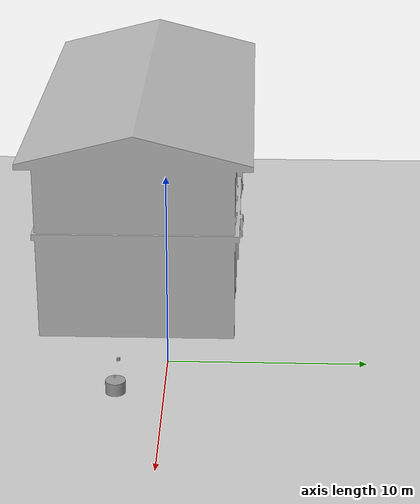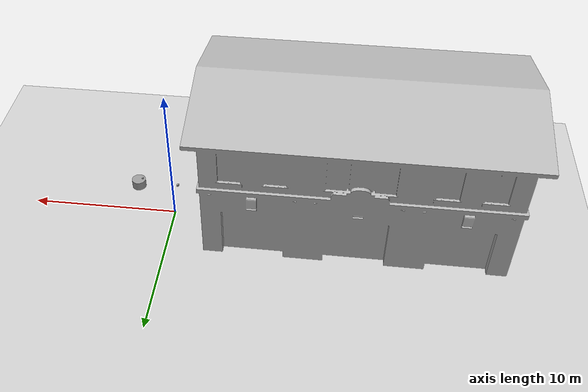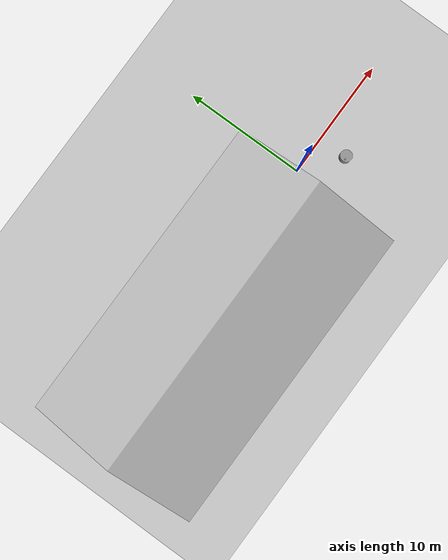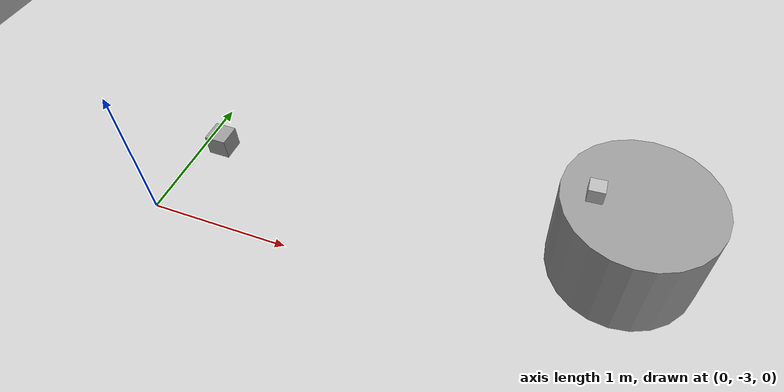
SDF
<sdf version="1.6">
 <world name="default">
  <light name="sun" type="directional">
   <pose>0 0 10 0 -0 0</pose>
   <diffuse>0.8 0.8 0.8 1</diffuse>
   <specular>0.2 0.2 0.2 1</specular>
   <attenuation>
    <range>1000</range>
    <constant>0.9</constant>
    <linear>0.01</linear>
    <quadratic>0.001</quadratic>
   </attenuation>
   <direction>-0.5 0.1 -0.9</direction>
  </light>
  <model name="ground_plane">
   <static>1</static>
   <link name="link">
    <collision name="collision">
     <geometry><plane><normal>0 0 1</normal><size>100 100</size></plane></geometry>
     <surface><friction><ode><mu>100</mu><mu2>50</mu2></ode></friction></surface>
    </collision>
    <visual name="visual">
     <cast_shadows>0</cast_shadows>
     <geometry><plane><normal>0 0 1</normal><size>100 100</size></plane></geometry>
     <material>
      <script><uri>file://media/materials/scripts/gazebo.material</uri><name>Gazebo/Grey</name></script>
     </material>
    </visual>
   </link>
  </model>
  <gravity>0 0 -9.8</gravity>
  <magnetic_field>6e-06 2.3e-05 -4.2e-05</magnetic_field>
  <atmosphere type="adiabatic"/>
  <physics name="default_physics" default="0" type="ode">
   <max_step_size>0.001</max_step_size>
   <real_time_factor>1</real_time_factor>
   <real_time_update_rate>1000</real_time_update_rate>
  </physics>
  <scene><ambient>0.4 0.4 0.4 1</ambient><background>0.7 0.7 0.7 1</background><shadows>1</shadows></scene>
  <spherical_coordinates>
   <surface_model>EARTH_WGS84</surface_model>
   <latitude_deg>0</latitude_deg>
   <longitude_deg>0</longitude_deg>
   <elevation>0</elevation>
   <heading_deg>0</heading_deg>
  </spherical_coordinates>
  <model name="particle_model">
   <link name="link">
    <pose>-0.076453 -1.75849 0 0 -0 0</pose>
    <gravity>0</gravity>
    <visual name="Wall_1_Visual">
     <pose>0 0 0.25 0 -0 0</pose>
     <geometry><box><size>0.15 0.15 0.15</size></box></geometry>
     <material>
      <lighting>0</lighting>
      <script><uri>file://media/materials/scripts/gazebo.material</uri><name>Gazebo/Grey</name></script>
     </material>
     <cast_shadows>0</cast_shadows>
    </visual>
    <inertial>
     <inertia><ixx>1</ixx><ixy>0</ixy><ixz>0</ixz><iyy>1</iyy><iyz>0</iyz><izz>1</izz></inertia>
     <mass>1</mass>
    </inertial>
   </link>
   <static>0</static>
   <plugin name="particles" filename="libModelParticlePlugin.so"/>
   <pose>0.356016 -0.725299 0 0 -0 0</pose>
  </model>
  <model name="camera">
   <pose>2.8363 -2.43317 0.698432 -0.000108 0.00065 -3.07143</pose>
   <link name="link">
    <inertial>
     <mass>0.1</mass>
     <inertia>
      <ixx>0.000166667</ixx>
      <iyy>0.000166667</iyy>
      <izz>0.000166667</izz>
      <ixy>0</ixy>
      <ixz>0</ixz>
      <iyz>0</iyz>
     </inertia>
    </inertial>
    <collision name="collision"><geometry><box><size>0.1 0.1 0.1</size></box></geometry></collision>
    <visual name="visual"><geometry><box><size>0.1 0.1 0.1</size></box></geometry></visual>
    <sensor name="camera" type="camera">
     <camera name="__default__">
      <horizontal_fov>1.047</horizontal_fov>
      <image><width>320</width><height>240</height></image>
      <clip><near>0.1</near><far>100</far></clip>
     </camera>
     <always_on>1</always_on>
     <update_rate>30</update_rate>
     <visualize>1</visualize>
     <plugin name="test" filename="libCameraEffectPlugin.so"/>
    </sensor>
   </link>
  </model>
  <model name="unit_cylinder">
   <static>1</static>
   <pose>3.11202 -2.36743 0.323387 0.000641 0.000137 -1.54669</pose>
   <link name="link">
    <inertial>
     <mass>1</mass>
     <inertia><ixx>0.145833</ixx><ixy>0</ixy><ixz>0</ixz><iyy>0.145833</iyy><iyz>0</iyz><izz>0.125</izz></inertia>
    </inertial>
    <collision name="collision">
     <geometry><cylinder><radius>0.489878</radius><length>0.650487</length></cylinder></geometry>
    </collision>
    <visual name="visual">
     <geometry><cylinder><radius>0.489878</radius><length>0.650487</length></cylinder></geometry>
     <material>
      <script><name>Gazebo/Grey</name><uri>file://media/materials/scripts/gazebo.material</uri></script>
     </material>
    </visual>
   </link>
  </model>
  <model name="fire_station">
   <static>1</static>
   <link name="link">
    <collision name="main">
     <pose>0 -0.135 5 0 -0 0</pose>
     <geometry><box><size>19.98 9.68 10</size></box></geometry>
    </collision>
    <collision name="front_top">
     <pose>0 4.957 7 0 -0 0</pose>
     <geometry><box><size>20 0.515 6</size></box></geometry>
    </collision>
    <collision name="column_0">
     <pose>9.333 4.957 2 0 -0 0</pose>
     <geometry><box><size>1.315 0.515 4</size></box></geometry>
    </collision>
    <collision name="column_1">
     <pose>3.33 4.957 2 0 -0 0</pose>
     <geometry><box><size>2.63 0.515 4</size></box></geometry>
    </collision>
    <collision name="column_2">
     <pose>-3.33 4.957 2 0 -0 0</pose>
     <geometry><box><size>2.63 0.515 4</size></box></geometry>
    </collision>
    <collision name="column_3">
     <pose>-9.333 4.957 2 0 -0 0</pose>
     <geometry><box><size>1.315 0.515 4</size></box></geometry>
    </collision>
    <collision name="roof_back">
     <pose>0 -2.742 10.467 0.25 -0 0</pose>
     <geometry><box><size>21.47 6.12 0.28</size></box></geometry>
    </collision>
    <collision name="roof_front">
     <pose>0 3.12 10.467 -0.25 0 0</pose>
     <geometry><box><size>21.47 6.12 0.28</size></box></geometry>
    </collision>
    <collision name="roof_base">
     <pose>0 0.188 9.705 0 -0 0</pose>
     <geometry><box><size>21.47 11.86 0.28</size></box></geometry>
    </collision>
    <collision name="roof_filling_0">
     <pose>0 0.188 9.985 0 -0 0</pose>
     <geometry><box><size>21.47 9.53 0.28</size></box></geometry>
    </collision>
    <collision name="roof_filling_1">
     <pose>0 0.188 10.14 0 -0 0</pose>
     <geometry><box><size>21.47 8.41 0.28</size></box></geometry>
    </collision>
    <collision name="roof_filling_2">
     <pose>0 0.188 10.42 0 -0 0</pose>
     <geometry><box><size>21.47 6.25 0.28</size></box></geometry>
    </collision>
    <collision name="roof_filling_3">
     <pose>0 0.188 10.7 0 -0 0</pose>
     <geometry><box><size>21.47 4.05 0.28</size></box></geometry>
    </collision>
    <collision name="roof_filling_4">
     <pose>0 0.188 10.98 0 -0 0</pose>
     <geometry><box><size>21.47 1.83 0.28</size></box></geometry>
    </collision>
    <visual name="visual">
     <geometry><mesh><uri>model://fire_station/meshes/fire_station.dae</uri></mesh></geometry>
    </visual>
   </link>
   <pose>-12.5609 -1.91233 0 0 -0 0</pose>
  </model>
 </world>
</sdf>
